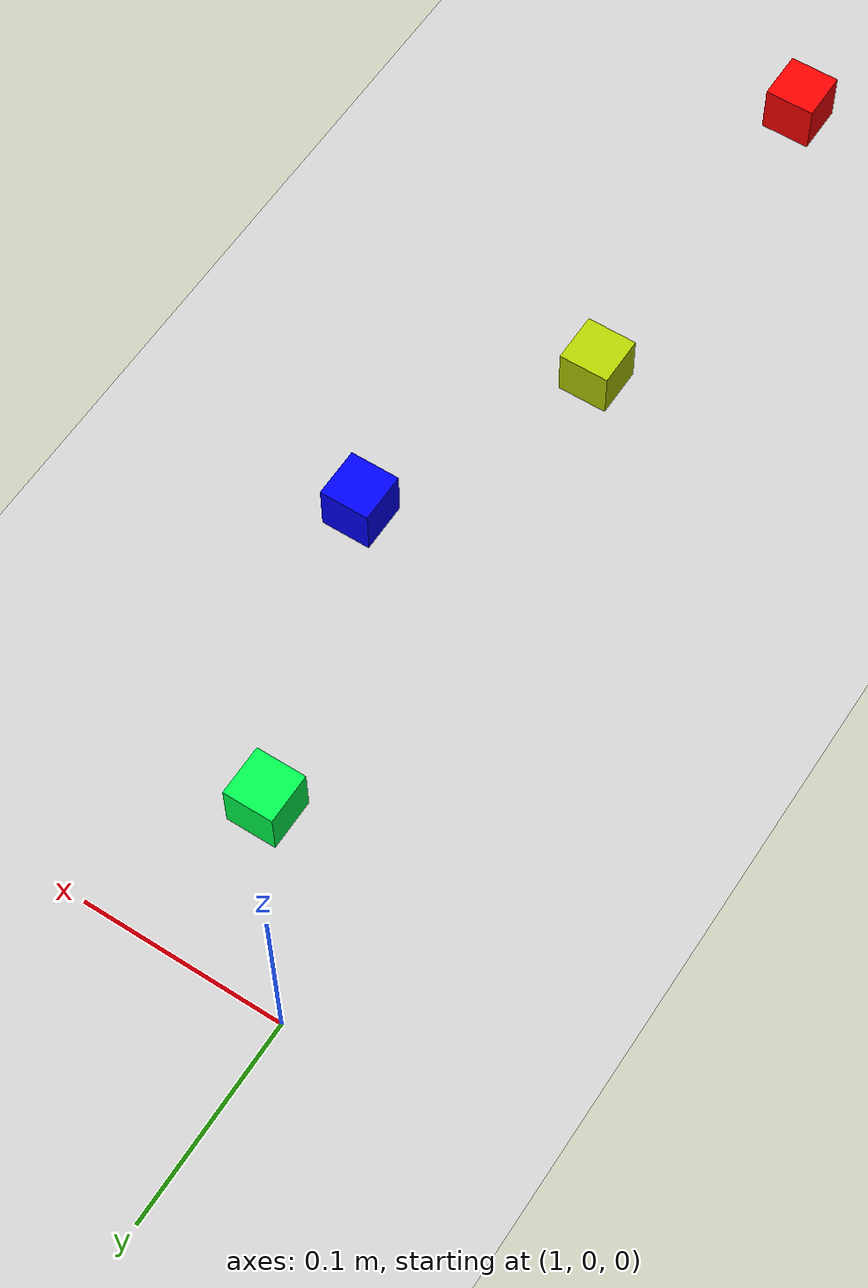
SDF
<sdf version="1.7">
 <world name="default">
  <model name="ground_plane">
   <static>1</static>
   <link name="link">
    <collision name="collision">
     <geometry><plane><normal>0 0 1</normal><size>100 100</size></plane></geometry>
     <surface>
      <contact><collide_bitmask>65535</collide_bitmask></contact>
      <friction><ode><mu>100</mu><mu2>50</mu2></ode></friction>
     </surface>
    </collision>
    <visual name="visual">
     <cast_shadows>0</cast_shadows>
     <geometry><plane><normal>0 0 1</normal><size>100 100</size></plane></geometry>
     <material>
      <script><uri>file://media/materials/scripts/gazebo.material</uri><name>Gazebo/Grey</name></script>
     </material>
    </visual>
   </link>
  </model>
  <model name="red_unit_box">
   <link name="link">
    <inertial>
     <mass>1</mass>
     <inertia>
      <ixx>0.166667</ixx>
      <ixy>0</ixy>
      <ixz>0</ixz>
      <iyy>0.166667</iyy>
      <iyz>0</iyz>
      <izz>0.166667</izz>
     </inertia>
    </inertial>
    <visual name="visual">
     <geometry><box><size>0.025 0.025 0.025</size></box></geometry>
     <material>
      <script><name>Gazebo/Grey</name><uri>file://media/materials/scripts/gazebo.material</uri></script>
      <shader type="pixel"><normal_map>__default__</normal_map></shader>
      <ambient>0.7 0 0 1</ambient>
      <diffuse>1 0 0 1</diffuse>
      <specular>0.01 0 0 1</specular>
      <emissive>0 0 0 1</emissive>
     </material>
    </visual>
    <collision name="collision">
     <geometry><box><size>0.025 0.025 0.025</size></box></geometry>
     <surface>
      <friction>
       <ode><mu>1</mu><mu2>1</mu2><fdir1>0 0 0</fdir1><slip1>0</slip1><slip2>0</slip2></ode>
       <torsional>
        <coefficient>1</coefficient>
        <patch_radius>0</patch_radius>
        <surface_radius>0</surface_radius>
        <use_patch_radius>1</use_patch_radius>
        <ode><slip>0</slip></ode>
       </torsional>
      </friction>
      <bounce><restitution_coefficient>0</restitution_coefficient><threshold>1e+06</threshold></bounce>
      <contact>
       <collide_without_contact>0</collide_without_contact>
       <collide_without_contact_bitmask>1</collide_without_contact_bitmask>
       <collide_bitmask>1</collide_bitmask>
       <ode>
        <soft_cfm>0</soft_cfm>
        <soft_erp>0.2</soft_erp>
        <kp>1e+13</kp>
        <kd>1</kd>
        <max_vel>0.01</max_vel>
        <min_depth>0</min_depth>
       </ode>
       <bullet>
        <split_impulse>1</split_impulse>
        <split_impulse_penetration_threshold>-0.01</split_impulse_penetration_threshold>
        <soft_cfm>0</soft_cfm>
        <soft_erp>0.2</soft_erp>
        <kp>1e+13</kp>
        <kd>1</kd>
       </bullet>
      </contact>
     </surface>
    </collision>
   </link>
   <static>0</static>
   <pose>1.05719 -0.524894 0.012501 -2.6e-05 6.3e-05 -1e-06</pose>
  </model>
  <model name="yellow_unit_box">
   <link name="link">
    <inertial>
     <mass>1</mass>
     <inertia>
      <ixx>0.166667</ixx>
      <ixy>0</ixy>
      <ixz>0</ixz>
      <iyy>0.166667</iyy>
      <iyz>0</iyz>
      <izz>0.166667</izz>
     </inertia>
    </inertial>
    <visual name="visual">
     <geometry><box><size>0.025 0.025 0.025</size></box></geometry>
     <material>
      <script><name>Gazebo/Grey</name><uri>file://media/materials/scripts/gazebo.material</uri></script>
      <shader type="pixel"><normal_map>__default__</normal_map></shader>
      <ambient>0.8 0.8 0 1</ambient>
      <diffuse>0.7 0.8 0 1</diffuse>
      <specular>0.01 0 0 1</specular>
      <emissive>0 0 0 1</emissive>
     </material>
    </visual>
    <collision name="collision">
     <geometry><box><size>0.025 0.025 0.025</size></box></geometry>
     <surface>
      <friction>
       <ode><mu>1</mu><mu2>1</mu2><fdir1>0 0 0</fdir1><slip1>0</slip1><slip2>0</slip2></ode>
       <torsional>
        <coefficient>1</coefficient>
        <patch_radius>0</patch_radius>
        <surface_radius>0</surface_radius>
        <use_patch_radius>1</use_patch_radius>
        <ode><slip>0</slip></ode>
       </torsional>
      </friction>
      <bounce><restitution_coefficient>0</restitution_coefficient><threshold>1e+06</threshold></bounce>
      <contact>
       <collide_without_contact>0</collide_without_contact>
       <collide_without_contact_bitmask>1</collide_without_contact_bitmask>
       <collide_bitmask>1</collide_bitmask>
       <ode>
        <soft_cfm>0</soft_cfm>
        <soft_erp>0.2</soft_erp>
        <kp>1e+13</kp>
        <kd>1</kd>
        <max_vel>0.01</max_vel>
        <min_depth>0</min_depth>
       </ode>
       <bullet>
        <split_impulse>1</split_impulse>
        <split_impulse_penetration_threshold>-0.01</split_impulse_penetration_threshold>
        <soft_cfm>0</soft_cfm>
        <soft_erp>0.2</soft_erp>
        <kp>1e+13</kp>
        <kd>1</kd>
       </bullet>
      </contact>
     </surface>
    </collision>
   </link>
   <static>0</static>
   <pose>1.05882 -0.339484 0.0125 3e-06 1e-05 -2e-06</pose>
  </model>
  <model name="blue_unit_box">
   <link name="link">
    <inertial>
     <mass>1</mass>
     <inertia>
      <ixx>0.166667</ixx>
      <ixy>0</ixy>
      <ixz>0</ixz>
      <iyy>0.166667</iyy>
      <iyz>0</iyz>
      <izz>0.166667</izz>
     </inertia>
    </inertial>
    <visual name="visual">
     <geometry><box><size>0.025 0.025 0.025</size></box></geometry>
     <material>
      <script><name>Gazebo/Grey</name><uri>file://media/materials/scripts/gazebo.material</uri></script>
      <shader type="pixel"><normal_map>__default__</normal_map></shader>
      <ambient>0 0 1 1</ambient>
      <diffuse>0 0 1 1</diffuse>
      <specular>0.01 0 0 1</specular>
      <emissive>0 0 0 1</emissive>
     </material>
    </visual>
    <collision name="collision">
     <geometry><box><size>0.025 0.025 0.025</size></box></geometry>
     <surface>
      <friction>
       <ode><mu>1</mu><mu2>1</mu2><fdir1>0 0 0</fdir1><slip1>0</slip1><slip2>0</slip2></ode>
       <torsional>
        <coefficient>1</coefficient>
        <patch_radius>0</patch_radius>
        <surface_radius>0</surface_radius>
        <use_patch_radius>1</use_patch_radius>
        <ode><slip>0</slip></ode>
       </torsional>
      </friction>
      <bounce><restitution_coefficient>0</restitution_coefficient><threshold>1e+06</threshold></bounce>
      <contact>
       <collide_without_contact>0</collide_without_contact>
       <collide_without_contact_bitmask>1</collide_without_contact_bitmask>
       <collide_bitmask>1</collide_bitmask>
       <ode>
        <soft_cfm>0</soft_cfm>
        <soft_erp>0.2</soft_erp>
        <kp>1e+13</kp>
        <kd>1</kd>
        <max_vel>0.01</max_vel>
        <min_depth>0</min_depth>
       </ode>
       <bullet>
        <split_impulse>1</split_impulse>
        <split_impulse_penetration_threshold>-0.01</split_impulse_penetration_threshold>
        <soft_cfm>0</soft_cfm>
        <soft_erp>0.2</soft_erp>
        <kp>1e+13</kp>
        <kd>1</kd>
       </bullet>
      </contact>
     </surface>
    </collision>
   </link>
   <static>0</static>
   <pose>1.10903 -0.219915 0.0125 1e-06 1.7e-05 -1e-06</pose>
  </model>
  <model name="green_unit_box_0">
   <link name="link">
    <inertial>
     <mass>1</mass>
     <inertia>
      <ixx>0.166667</ixx>
      <ixy>0</ixy>
      <ixz>0</ixz>
      <iyy>0.166667</iyy>
      <iyz>0</iyz>
      <izz>0.166667</izz>
     </inertia>
    </inertial>
    <visual name="visual">
     <geometry><box><size>0.025 0.025 0.025</size></box></geometry>
     <material>
      <script><name>Gazebo/Grey</name><uri>file://media/materials/scripts/gazebo.material</uri></script>
      <shader type="pixel"><normal_map>__default__</normal_map></shader>
      <ambient>0 1 0.3 1</ambient>
      <diffuse>0 1 0.3 1</diffuse>
      <specular>0.01 0 0 1</specular>
      <emissive>0 0 0 1</emissive>
     </material>
    </visual>
    <collision name="collision">
     <geometry><box><size>0.025 0.025 0.025</size></box></geometry>
     <surface>
      <friction>
       <ode><mu>1</mu><mu2>1</mu2><fdir1>0 0 0</fdir1><slip1>0</slip1><slip2>0</slip2></ode>
       <torsional>
        <coefficient>1</coefficient>
        <patch_radius>0</patch_radius>
        <surface_radius>0</surface_radius>
        <use_patch_radius>1</use_patch_radius>
        <ode><slip>0</slip></ode>
       </torsional>
      </friction>
      <bounce><restitution_coefficient>0</restitution_coefficient><threshold>1e+06</threshold></bounce>
      <contact>
       <collide_without_contact>0</collide_without_contact>
       <collide_without_contact_bitmask>1</collide_without_contact_bitmask>
       <collide_bitmask>1</collide_bitmask>
       <ode>
        <soft_cfm>0</soft_cfm>
        <soft_erp>0.2</soft_erp>
        <kp>1e+13</kp>
        <kd>1</kd>
        <max_vel>0.01</max_vel>
        <min_depth>0</min_depth>
       </ode>
       <bullet>
        <split_impulse>1</split_impulse>
        <split_impulse_penetration_threshold>-0.01</split_impulse_penetration_threshold>
        <soft_cfm>0</soft_cfm>
        <soft_erp>0.2</soft_erp>
        <kp>1e+13</kp>
        <kd>1</kd>
       </bullet>
      </contact>
     </surface>
    </collision>
   </link>
   <static>0</static>
   <pose>1.05986 -0.076111 0.0125 -5e-06 4e-06 0</pose>
  </model>
 </world>
</sdf>
